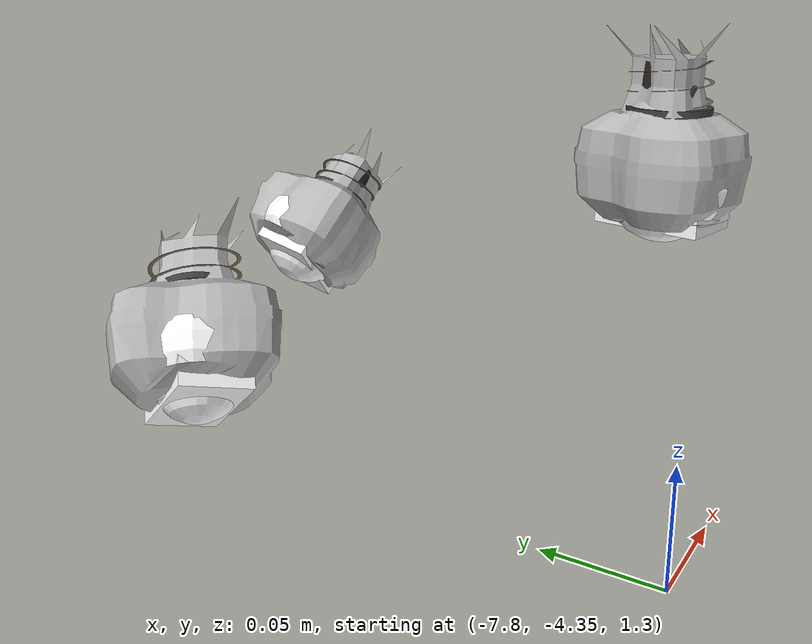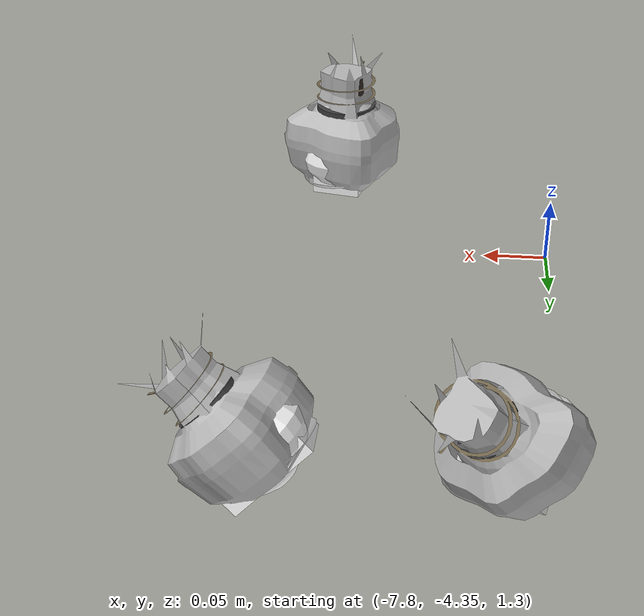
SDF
<sdf version="1.11">
 <world name="peach_orchard">
  <model name="ground">
   <static>true</static>
   <link name="link">
    <visual name="soil">
     <geometry><plane><normal>0 0 1</normal><size>32 22</size></plane></geometry>
     <material>
      <ambient>1 1 1 1</ambient>
      <diffuse>1 1 1 1</diffuse>
      <specular>0.1 0.1 0.1 1</specular>
      <pbr>
       <metal>
        <albedo_map>textures/soil_albedo.png</albedo_map>
        <normal_map type="tangent">textures/soil_normal.png</normal_map>
        <roughness>0.95</roughness>
        <metalness>0</metalness>
       </metal>
      </pbr>
     </material>
    </visual>
    <collision name="c_soil">
     <geometry><plane><normal>0 0 1</normal><size>32 22</size></plane></geometry>
    </collision>
   </link>
  </model>
  <model name="peach_tree_r0_t1_00">
   <pose>-7.64515 -4.29066 1.39483 0 0.00561295 -2.11278</pose>
   <static>true</static>
   <link name="bag">
    <visual name="bag_mesh">
     <pose>0 0 0.0413493 0 0 -0</pose>
     <geometry>
      <mesh><uri>model://peach_sim/meshes/bagged_peach.glb</uri><scale>0.940895 1.10383 0.939757</scale></mesh>
     </geometry>
    </visual>
    <visual name="body">
     <pose>0 0 0.0233493 0 0 0</pose>
     <geometry><ellipsoid><radii>0.0352836 0.0286995 0.0252172</radii></ellipsoid></geometry>
     <material>
      <ambient>1 1 1 1</ambient>
      <diffuse>1 1 1 1</diffuse>
      <specular>0.1 0.1 0.1 1</specular>
      <pbr>
       <metal>
        <albedo_map>textures/paper_bag_albedo.png</albedo_map>
        <normal_map type="tangent">textures/paper_bag_normal.png</normal_map>
        <roughness>0.72</roughness>
        <metalness>0</metalness>
       </metal>
      </pbr>
     </material>
    </visual>
    <visual name="bottom_fold">
     <pose>0 0 0.012 0 0 0.35</pose>
     <geometry><box><size>0.0546895 0.0330044 0.022</size></box></geometry>
     <material>
      <ambient>1 1 1 1</ambient>
      <diffuse>1 1 1 1</diffuse>
      <specular>0.1 0.1 0.1 1</specular>
      <pbr>
       <metal>
        <albedo_map>textures/paper_bag_albedo.png</albedo_map>
        <normal_map type="tangent">textures/paper_bag_normal.png</normal_map>
        <roughness>0.8</roughness>
        <metalness>0</metalness>
       </metal>
      </pbr>
     </material>
    </visual>
    <visual name="fruit">
     <pose>0 0 0.0217303 0 0 0</pose>
     <geometry><sphere><radius>0.0288395</radius></sphere></geometry>
     <material>
      <ambient>1 1 1 1</ambient>
      <diffuse>1 1 1 1</diffuse>
      <specular>0.1 0.1 0.1 1</specular>
      <pbr>
       <metal>
        <albedo_map>textures/fruit_skin_albedo.png</albedo_map>
        <normal_map type="tangent">textures/fruit_skin_normal.png</normal_map>
        <roughness>0.55</roughness>
        <metalness>0</metalness>
       </metal>
      </pbr>
     </material>
    </visual>
    <visual name="neck">
     <pose>0 0 0.0556986 0 0 0</pose>
     <geometry><cylinder><radius>0.013</radius><length>0.018</length></cylinder></geometry>
     <material>
      <ambient>1 1 1 1</ambient>
      <diffuse>1 1 1 1</diffuse>
      <specular>0.1 0.1 0.1 1</specular>
      <pbr>
       <metal>
        <albedo_map>textures/paper_bag_albedo.png</albedo_map>
        <normal_map type="tangent">textures/paper_bag_normal.png</normal_map>
        <roughness>0.75</roughness>
        <metalness>0</metalness>
       </metal>
      </pbr>
     </material>
    </visual>
    <visual name="gather">
     <pose>0 0 0.0366986 0 0 0</pose>
     <geometry><cylinder><radius>0.019</radius><length>0.02</length></cylinder></geometry>
     <material>
      <ambient>1 1 1 1</ambient>
      <diffuse>1 1 1 1</diffuse>
      <specular>0.1 0.1 0.1 1</specular>
      <pbr>
       <metal>
        <albedo_map>textures/paper_bag_albedo.png</albedo_map>
        <normal_map type="tangent">textures/paper_bag_normal.png</normal_map>
        <roughness>0.8</roughness>
        <metalness>0</metalness>
       </metal>
      </pbr>
     </material>
    </visual>
    <visual name="inner_paper">
     <pose>0 0 0.0606986 0 0 0</pose>
     <geometry><cylinder><radius>0.01</radius><length>0.008</length></cylinder></geometry>
     <material>
      <ambient>0.180392 0.14902 0.133333 1</ambient>
      <diffuse>0.180392 0.14902 0.133333 1</diffuse>
      <specular>0.1 0.1 0.1 1</specular>
     </material>
    </visual>
    <visual name="wire_0">
     <pose>0 0 0.0506986 0 0 0</pose>
     <geometry><cylinder><radius>0.0205</radius><length>0.0035</length></cylinder></geometry>
     <material>
      <ambient>0.25 0.25 0.25 1</ambient>
      <diffuse>0.25 0.25 0.25 1</diffuse>
      <specular>0.1 0.1 0.1 1</specular>
     </material>
    </visual>
    <visual name="wire_1">
     <pose>0 0 0.0576986 0 0 0</pose>
     <geometry><cylinder><radius>0.0205</radius><length>0.0035</length></cylinder></geometry>
     <material>
      <ambient>0.25 0.25 0.25 1</ambient>
      <diffuse>0.25 0.25 0.25 1</diffuse>
      <specular>0.1 0.1 0.1 1</specular>
     </material>
    </visual>
    <visual name="wire_tail">
     <pose>0.01 0 0.0586986 0 0.521618 0</pose>
     <geometry><cylinder><radius>0.0012</radius><length>0.026</length></cylinder></geometry>
     <material>
      <ambient>0.25 0.25 0.25 1</ambient>
      <diffuse>0.25 0.25 0.25 1</diffuse>
      <specular>0.1 0.1 0.1 1</specular>
     </material>
    </visual>
    <collision name="c_body">
     <pose>0 0 0.0233493 0 0 0</pose>
     <geometry><cylinder><radius>0.0352836</radius><length>0.0466986</length></cylinder></geometry>
    </collision>
   </link>
  </model>
  <model name="peach_tree_r0_t1_01">
   <pose>-7.63071 -4.04584 1.3312 0 0.790702 -0.212054</pose>
   <static>true</static>
   <link name="bag">
    <visual name="bag_mesh">
     <pose>0 0 0.041249 0 0 -0</pose>
     <geometry>
      <mesh><uri>model://peach_sim/meshes/bagged_peach.glb</uri><scale>1.04374 1.15412 0.937478</scale></mesh>
     </geometry>
    </visual>
    <visual name="body">
     <pose>0 0 0.023249 0 0 0</pose>
     <geometry><ellipsoid><radii>0.0391401 0.0300071 0.025109</radii></ellipsoid></geometry>
     <material>
      <ambient>1 1 1 1</ambient>
      <diffuse>1 1 1 1</diffuse>
      <specular>0.1 0.1 0.1 1</specular>
      <pbr>
       <metal>
        <albedo_map>textures/paper_bag_albedo.png</albedo_map>
        <normal_map type="tangent">textures/paper_bag_normal.png</normal_map>
        <roughness>0.72</roughness>
        <metalness>0</metalness>
       </metal>
      </pbr>
     </material>
    </visual>
    <visual name="bottom_fold">
     <pose>0 0 0.012 0 0 0.35</pose>
     <geometry><box><size>0.0606671 0.0345082 0.022</size></box></geometry>
     <material>
      <ambient>1 1 1 1</ambient>
      <diffuse>1 1 1 1</diffuse>
      <specular>0.1 0.1 0.1 1</specular>
      <pbr>
       <metal>
        <albedo_map>textures/paper_bag_albedo.png</albedo_map>
        <normal_map type="tangent">textures/paper_bag_normal.png</normal_map>
        <roughness>0.8</roughness>
        <metalness>0</metalness>
       </metal>
      </pbr>
     </material>
    </visual>
    <visual name="fruit">
     <pose>0 0 0.0199238 0 0 0</pose>
     <geometry><sphere><radius>0.0269608</radius></sphere></geometry>
     <material>
      <ambient>1 1 1 1</ambient>
      <diffuse>1 1 1 1</diffuse>
      <specular>0.1 0.1 0.1 1</specular>
      <pbr>
       <metal>
        <albedo_map>textures/fruit_skin_albedo.png</albedo_map>
        <normal_map type="tangent">textures/fruit_skin_normal.png</normal_map>
        <roughness>0.55</roughness>
        <metalness>0</metalness>
       </metal>
      </pbr>
     </material>
    </visual>
    <visual name="neck">
     <pose>0 0 0.0554981 0 0 0</pose>
     <geometry><cylinder><radius>0.013</radius><length>0.018</length></cylinder></geometry>
     <material>
      <ambient>1 1 1 1</ambient>
      <diffuse>1 1 1 1</diffuse>
      <specular>0.1 0.1 0.1 1</specular>
      <pbr>
       <metal>
        <albedo_map>textures/paper_bag_albedo.png</albedo_map>
        <normal_map type="tangent">textures/paper_bag_normal.png</normal_map>
        <roughness>0.75</roughness>
        <metalness>0</metalness>
       </metal>
      </pbr>
     </material>
    </visual>
    <visual name="gather">
     <pose>0 0 0.0364981 0 0 0</pose>
     <geometry><cylinder><radius>0.019</radius><length>0.02</length></cylinder></geometry>
     <material>
      <ambient>1 1 1 1</ambient>
      <diffuse>1 1 1 1</diffuse>
      <specular>0.1 0.1 0.1 1</specular>
      <pbr>
       <metal>
        <albedo_map>textures/paper_bag_albedo.png</albedo_map>
        <normal_map type="tangent">textures/paper_bag_normal.png</normal_map>
        <roughness>0.8</roughness>
        <metalness>0</metalness>
       </metal>
      </pbr>
     </material>
    </visual>
    <visual name="inner_paper">
     <pose>0 0 0.0604981 0 0 0</pose>
     <geometry><cylinder><radius>0.01</radius><length>0.008</length></cylinder></geometry>
     <material>
      <ambient>0.180392 0.14902 0.133333 1</ambient>
      <diffuse>0.180392 0.14902 0.133333 1</diffuse>
      <specular>0.1 0.1 0.1 1</specular>
     </material>
    </visual>
    <visual name="wire_0">
     <pose>0 0 0.0504981 0 0 0</pose>
     <geometry><cylinder><radius>0.0205</radius><length>0.0035</length></cylinder></geometry>
     <material>
      <ambient>0.25 0.25 0.25 1</ambient>
      <diffuse>0.25 0.25 0.25 1</diffuse>
      <specular>0.1 0.1 0.1 1</specular>
     </material>
    </visual>
    <visual name="wire_1">
     <pose>0 0 0.0574981 0 0 0</pose>
     <geometry><cylinder><radius>0.0205</radius><length>0.0035</length></cylinder></geometry>
     <material>
      <ambient>0.25 0.25 0.25 1</ambient>
      <diffuse>0.25 0.25 0.25 1</diffuse>
      <specular>0.1 0.1 0.1 1</specular>
     </material>
    </visual>
    <visual name="wire_tail">
     <pose>0.01 0 0.0584981 0 0.521618 0</pose>
     <geometry><cylinder><radius>0.0012</radius><length>0.026</length></cylinder></geometry>
     <material>
      <ambient>0.25 0.25 0.25 1</ambient>
      <diffuse>0.25 0.25 0.25 1</diffuse>
      <specular>0.1 0.1 0.1 1</specular>
     </material>
    </visual>
    <collision name="c_body">
     <pose>0 0 0.023249 0 0 0</pose>
     <geometry><cylinder><radius>0.0391401</radius><length>0.0464981</length></cylinder></geometry>
    </collision>
   </link>
  </model>
  <model name="peach_tree_r0_t1_08">
   <pose>-7.78 -4.10204 1.30207 0 0.733049 0.73689</pose>
   <static>true</static>
   <link name="bag">
    <visual name="bag_mesh">
     <pose>0 0 0.0455558 0 0 0</pose>
     <geometry>
      <mesh><uri>model://peach_sim/meshes/bagged_peach.glb</uri><scale>1.07668 1.29264 1.03536</scale></mesh>
     </geometry>
    </visual>
    <visual name="body">
     <pose>0 0 0.0275558 0 0 0</pose>
     <geometry><ellipsoid><radii>0.0403756 0.0336087 0.0297603</radii></ellipsoid></geometry>
     <material>
      <ambient>1 1 1 1</ambient>
      <diffuse>1 1 1 1</diffuse>
      <specular>0.1 0.1 0.1 1</specular>
      <pbr>
       <metal>
        <albedo_map>textures/paper_bag_albedo.png</albedo_map>
        <normal_map type="tangent">textures/paper_bag_normal.png</normal_map>
        <roughness>0.72</roughness>
        <metalness>0</metalness>
       </metal>
      </pbr>
     </material>
    </visual>
    <visual name="bottom_fold">
     <pose>0 0 0.012 0 0 0.35</pose>
     <geometry><box><size>0.0625821 0.0386499 0.022</size></box></geometry>
     <material>
      <ambient>1 1 1 1</ambient>
      <diffuse>1 1 1 1</diffuse>
      <specular>0.1 0.1 0.1 1</specular>
      <pbr>
       <metal>
        <albedo_map>textures/paper_bag_albedo.png</albedo_map>
        <normal_map type="tangent">textures/paper_bag_normal.png</normal_map>
        <roughness>0.8</roughness>
        <metalness>0</metalness>
       </metal>
      </pbr>
     </material>
    </visual>
    <visual name="fruit">
     <pose>0 0 0.0177864 0 0 0</pose>
     <geometry><sphere><radius>0.0247378</radius></sphere></geometry>
     <material>
      <ambient>1 1 1 1</ambient>
      <diffuse>1 1 1 1</diffuse>
      <specular>0.1 0.1 0.1 1</specular>
      <pbr>
       <metal>
        <albedo_map>textures/fruit_skin_albedo.png</albedo_map>
        <normal_map type="tangent">textures/fruit_skin_normal.png</normal_map>
        <roughness>0.55</roughness>
        <metalness>0</metalness>
       </metal>
      </pbr>
     </material>
    </visual>
    <visual name="neck">
     <pose>0 0 0.0641116 0 0 0</pose>
     <geometry><cylinder><radius>0.013</radius><length>0.018</length></cylinder></geometry>
     <material>
      <ambient>1 1 1 1</ambient>
      <diffuse>1 1 1 1</diffuse>
      <specular>0.1 0.1 0.1 1</specular>
      <pbr>
       <metal>
        <albedo_map>textures/paper_bag_albedo.png</albedo_map>
        <normal_map type="tangent">textures/paper_bag_normal.png</normal_map>
        <roughness>0.75</roughness>
        <metalness>0</metalness>
       </metal>
      </pbr>
     </material>
    </visual>
    <visual name="gather">
     <pose>0 0 0.0451116 0 0 0</pose>
     <geometry><cylinder><radius>0.019</radius><length>0.02</length></cylinder></geometry>
     <material>
      <ambient>1 1 1 1</ambient>
      <diffuse>1 1 1 1</diffuse>
      <specular>0.1 0.1 0.1 1</specular>
      <pbr>
       <metal>
        <albedo_map>textures/paper_bag_albedo.png</albedo_map>
        <normal_map type="tangent">textures/paper_bag_normal.png</normal_map>
        <roughness>0.8</roughness>
        <metalness>0</metalness>
       </metal>
      </pbr>
     </material>
    </visual>
    <visual name="inner_paper">
     <pose>0 0 0.0691116 0 0 0</pose>
     <geometry><cylinder><radius>0.01</radius><length>0.008</length></cylinder></geometry>
     <material>
      <ambient>0.180392 0.14902 0.133333 1</ambient>
      <diffuse>0.180392 0.14902 0.133333 1</diffuse>
      <specular>0.1 0.1 0.1 1</specular>
     </material>
    </visual>
    <visual name="wire_0">
     <pose>0 0 0.0591116 0 0 0</pose>
     <geometry><cylinder><radius>0.0205</radius><length>0.0035</length></cylinder></geometry>
     <material>
      <ambient>0.25 0.25 0.25 1</ambient>
      <diffuse>0.25 0.25 0.25 1</diffuse>
      <specular>0.1 0.1 0.1 1</specular>
     </material>
    </visual>
    <visual name="wire_1">
     <pose>0 0 0.0661116 0 0 0</pose>
     <geometry><cylinder><radius>0.0205</radius><length>0.0035</length></cylinder></geometry>
     <material>
      <ambient>0.25 0.25 0.25 1</ambient>
      <diffuse>0.25 0.25 0.25 1</diffuse>
      <specular>0.1 0.1 0.1 1</specular>
     </material>
    </visual>
    <visual name="wire_tail">
     <pose>0.01 0 0.0671116 0 0.521618 0</pose>
     <geometry><cylinder><radius>0.0012</radius><length>0.026</length></cylinder></geometry>
     <material>
      <ambient>0.25 0.25 0.25 1</ambient>
      <diffuse>0.25 0.25 0.25 1</diffuse>
      <specular>0.1 0.1 0.1 1</specular>
     </material>
    </visual>
    <collision name="c_body">
     <pose>0 0 0.0275558 0 0 0</pose>
     <geometry><cylinder><radius>0.0403756</radius><length>0.0551116</length></cylinder></geometry>
    </collision>
   </link>
  </model>
 </world>
</sdf>
